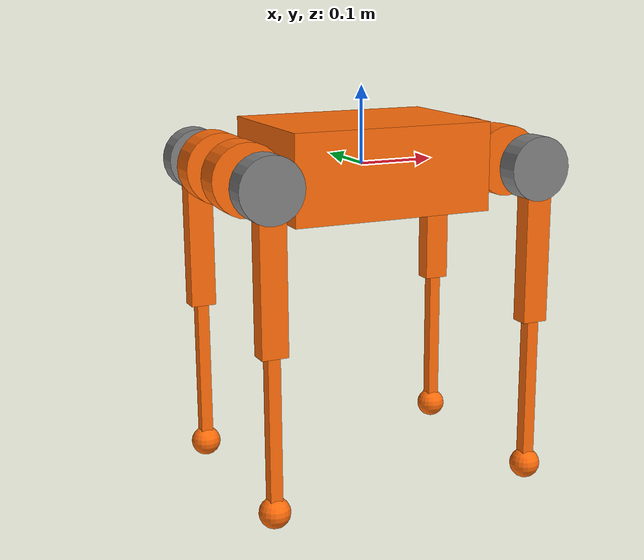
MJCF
<?xml version='1.0' encoding='utf-8'?>
<mujoco model="a1">
  <compiler angle="radian" boundmass="1e-06" boundinertia="1e-08" meshdir=".." />
  <worldbody>
    <body name="base">
      <joint type="free" />
      <geom size="0.1335 0.097 0.057" type="box" rgba="1 0.423529 0.0392157 1" />
      <geom size="0.0005 0.0005 0.0005" type="box" rgba="0.8 0 0 1" />
      <body name="FR_hip" pos="0.1805 -0.047 0">
        <inertial pos="-0.00266413 -0.000510941 -0.0157999" quat="0.715285 -0.0134721 -0.0179818 0.698471" mass="0.864993" diaginertia="0.00184411 0.00144895 0.000638259" />
        <joint name="FR_hip_joint" pos="0 0 0" axis="1 0 0" range="-0.802851 0.802851" actuatorfrcrange="-33.5 33.5" />
        <geom size="0.046 0.02" quat="0.707107 0.707107 0 0" type="cylinder" rgba="1 0.423529 0.0392157 1" />
        <geom size="0.041 0.016" pos="0 -0.081 0" quat="0.707107 0.707107 0 0" type="cylinder" />
        <body name="FR_thigh" pos="0 -0.0838 0">
          <inertial pos="-0.003237 0.022327 -0.027326" quat="0.999125 -0.00256393 -0.0409531 -0.00806091" mass="1.013" diaginertia="0.00555739 0.00513936 0.00133944" />
          <joint name="FR_thigh_joint" pos="0 0 0" axis="0 1 0" range="-1.0472 4.18879" actuatorfrcrange="-33.5 33.5" />
          <geom size="0.1 0.01225 0.017" pos="0 0 -0.1" quat="0.707107 0 0.707107 0" type="box" rgba="1 0.423529 0.0392157 1" />
          <body name="FR_calf" pos="0 0 -0.2">
            <inertial pos="0.00472659 0 -0.131975" quat="0.706886 0.017653 0.017653 0.706886" mass="0.226" diaginertia="0.00340344 0.00339393 3.54834e-05" />
            <joint name="FR_calf_joint" pos="0 0 0" axis="0 1 0" range="-2.69653 -0.916298" actuatorfrcrange="-33.5 33.5" />
            <geom size="0.1 0.008 0.008" pos="0 0 -0.1" quat="0.707107 0 0.707107 0" type="box" rgba="1 0.423529 0.0392157 1" />
            <geom size="0.02" pos="0 0 -0.2" rgba="1 0.423529 0.0392157 1" />
          </body>
        </body>
      </body>
      <body name="FL_hip" pos="0.1805 0.047 0">
        <inertial pos="-0.00266413 0.000510941 0.0158498" quat="0.698491 0.0180283 0.0140626 0.715253" mass="0.864993" diaginertia="0.00184273 0.00144765 0.000638208" />
        <joint name="FL_hip_joint" pos="0 0 0" axis="1 0 0" range="-0.802851 0.802851" actuatorfrcrange="-33.5 33.5" />
        <geom size="0.046 0.02" quat="0.707107 0.707107 0 0" type="cylinder" rgba="1 0.423529 0.0392157 1" />
        <geom size="0.041 0.016" pos="0 0.081 0" quat="0.707107 0.707107 0 0" type="cylinder" />
        <body name="FL_thigh" pos="0 0.0838 0">
          <inertial pos="-0.003237 -0.022327 -0.027326" quat="0.999125 0.00256393 -0.0409531 0.00806091" mass="1.013" diaginertia="0.00555739 0.00513936 0.00133944" />
          <joint name="FL_thigh_joint" pos="0 0 0" axis="0 1 0" range="-1.0472 4.18879" actuatorfrcrange="-33.5 33.5" />
          <geom size="0.1 0.01225 0.017" pos="0 0 -0.1" quat="0.707107 0 0.707107 0" type="box" rgba="1 0.423529 0.0392157 1" />
          <body name="FL_calf" pos="0 0 -0.2">
            <inertial pos="0.00472659 0 -0.131975" quat="0.706886 0.017653 0.017653 0.706886" mass="0.226" diaginertia="0.00340344 0.00339393 3.54834e-05" />
            <joint name="FL_calf_joint" pos="0 0 0" axis="0 1 0" range="-2.69653 -0.916298" actuatorfrcrange="-33.5 33.5" />
            <geom size="0.1 0.008 0.008" pos="0 0 -0.1" quat="0.707107 0 0.707107 0" type="box" rgba="1 0.423529 0.0392157 1" />
            <geom size="0.02" pos="0 0 -0.2" rgba="1 0.423529 0.0392157 1" />
          </body>
        </body>
      </body>
      <body name="RR_hip" pos="-0.1805 -0.047 0">
        <inertial pos="0.00266413 -0.000510941 -0.0157999" quat="0.698471 0.0179818 0.0134721 0.715285" mass="0.864993" diaginertia="0.00184411 0.00144895 0.000638259" />
        <joint name="RR_hip_joint" pos="0 0 0" axis="1 0 0" range="-0.802851 0.802851" actuatorfrcrange="-33.5 33.5" />
        <geom size="0.046 0.02" quat="0.707107 0.707107 0 0" type="cylinder" rgba="1 0.423529 0.0392157 1" />
        <geom size="0.041 0.016" pos="0 -0.081 0" quat="0.707107 0.707107 0 0" type="cylinder" />
        <body name="RR_thigh" pos="0 -0.0838 0">
          <inertial pos="-0.003237 0.022327 -0.027326" quat="0.999125 -0.00256393 -0.0409531 -0.00806091" mass="1.013" diaginertia="0.00555739 0.00513936 0.00133944" />
          <joint name="RR_thigh_joint" pos="0 0 0" axis="0 1 0" range="-1.0472 4.18879" actuatorfrcrange="-33.5 33.5" />
          <geom size="0.1 0.01225 0.017" pos="0 0 -0.1" quat="0.707107 0 0.707107 0" type="box" rgba="1 0.423529 0.0392157 1" />
          <body name="RR_calf" pos="0 0 -0.2">
            <inertial pos="0.00472659 0 -0.131975" quat="0.706886 0.017653 0.017653 0.706886" mass="0.226" diaginertia="0.00340344 0.00339393 3.54834e-05" />
            <joint name="RR_calf_joint" pos="0 0 0" axis="0 1 0" range="-2.69653 -0.916298" actuatorfrcrange="-33.5 33.5" />
            <geom size="0.1 0.008 0.008" pos="0 0 -0.1" quat="0.707107 0 0.707107 0" type="box" rgba="1 0.423529 0.0392157 1" />
            <geom size="0.02" pos="0 0 -0.2" rgba="1 0.423529 0.0392157 1" />
          </body>
        </body>
      </body>
      <body name="RL_hip" pos="-0.1805 0.047 0">
        <inertial pos="0.00266413 0.000510941 0.0158498" quat="0.715253 -0.0140626 -0.0180283 0.698491" mass="0.864993" diaginertia="0.00184273 0.00144765 0.000638208" />
        <joint name="RL_hip_joint" pos="0 0 0" axis="1 0 0" range="-0.802851 0.802851" actuatorfrcrange="-33.5 33.5" />
        <geom size="0.046 0.02" quat="0.707107 0.707107 0 0" type="cylinder" rgba="1 0.423529 0.0392157 1" />
        <geom size="0.041 0.016" pos="0 0.081 0" quat="0.707107 0.707107 0 0" type="cylinder" />
        <body name="RL_thigh" pos="0 0.0838 0">
          <inertial pos="-0.003237 -0.022327 -0.027326" quat="0.999125 0.00256393 -0.0409531 0.00806091" mass="1.013" diaginertia="0.00555739 0.00513936 0.00133944" />
          <joint name="RL_thigh_joint" pos="0 0 0" axis="0 1 0" range="-1.0472 4.18879" actuatorfrcrange="-33.5 33.5" />
          <geom size="0.1 0.01225 0.017" pos="0 0 -0.1" quat="0.707107 0 0.707107 0" type="box" rgba="1 0.423529 0.0392157 1" />
          <body name="RL_calf" pos="0 0 -0.2">
            <inertial pos="0.00472659 0 -0.131975" quat="0.706886 0.017653 0.017653 0.706886" mass="0.226" diaginertia="0.00340344 0.00339393 3.54834e-05" />
            <joint name="RL_calf_joint" pos="0 0 0" axis="0 1 0" range="-2.69653 -0.916298" actuatorfrcrange="-33.5 33.5" />
            <geom size="0.1 0.008 0.008" pos="0 0 -0.1" quat="0.707107 0 0.707107 0" type="box" rgba="1 0.423529 0.0392157 1" />
            <geom size="0.02" pos="0 0 -0.2" rgba="1 0.423529 0.0392157 1" />
          </body>
        </body>
      </body>
    </body>
  </worldbody>
</mujoco>
